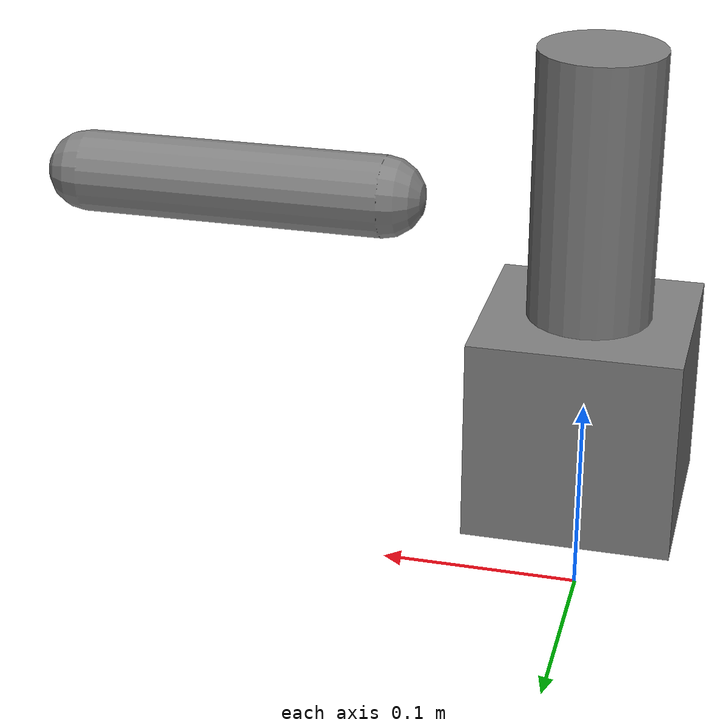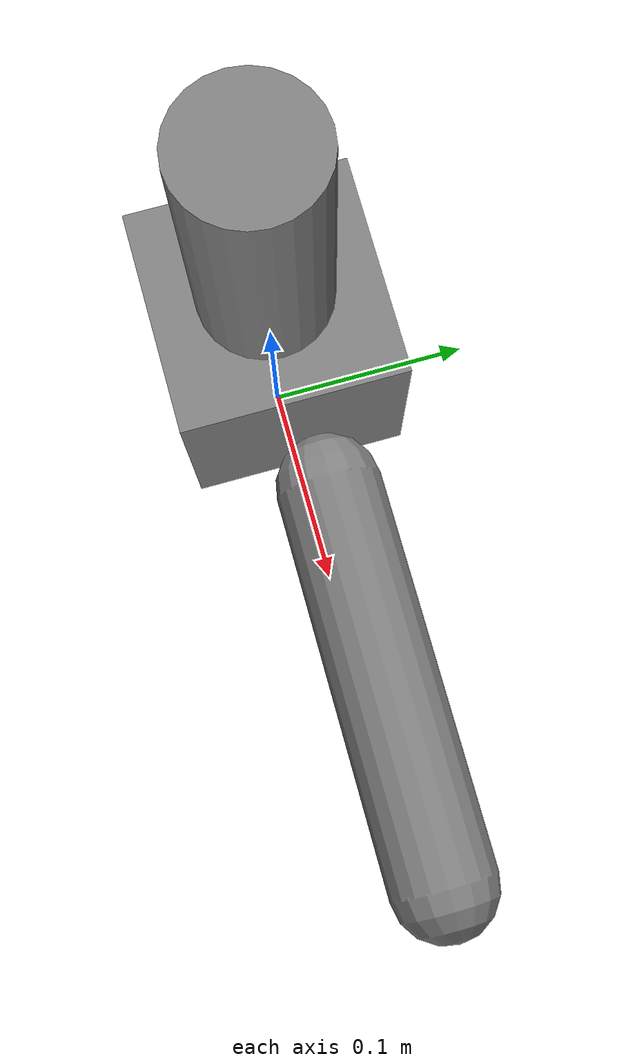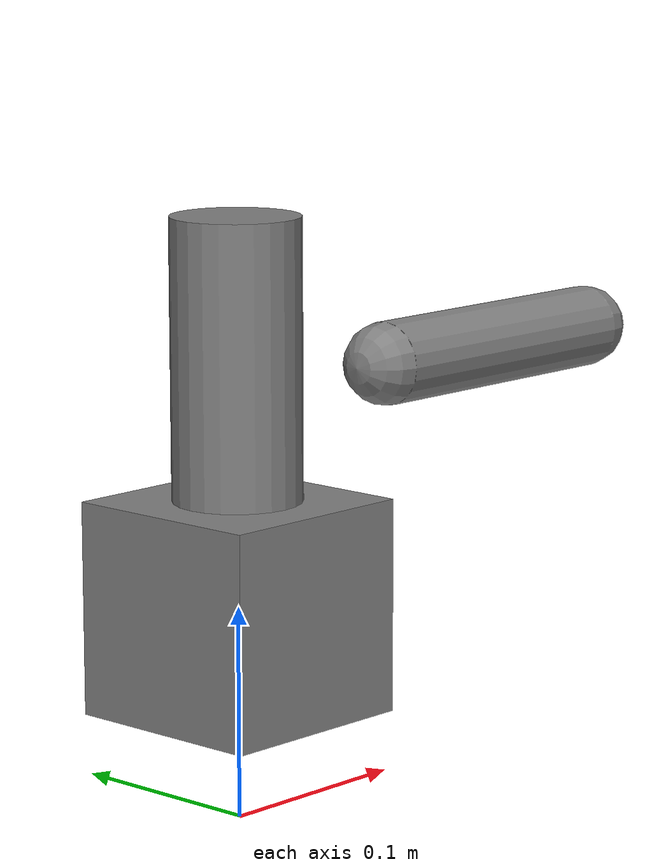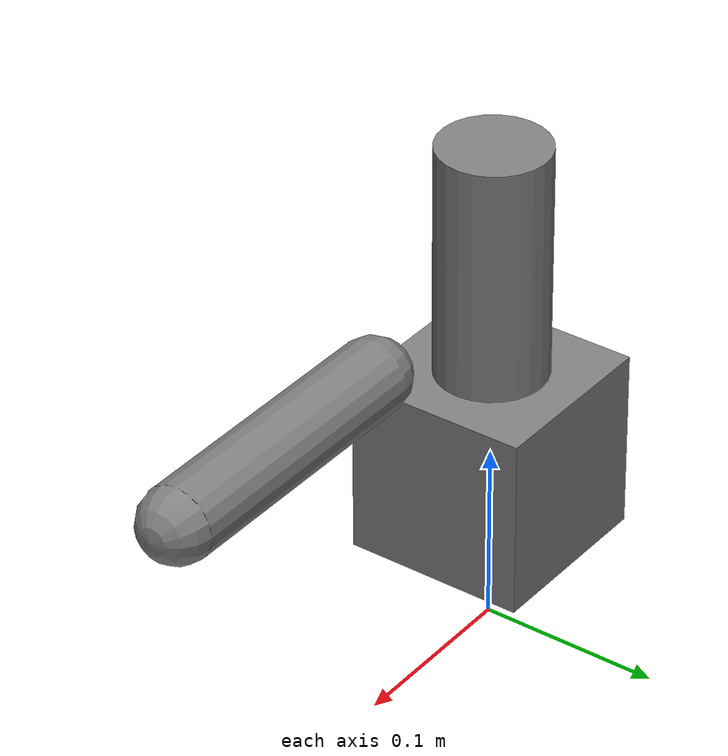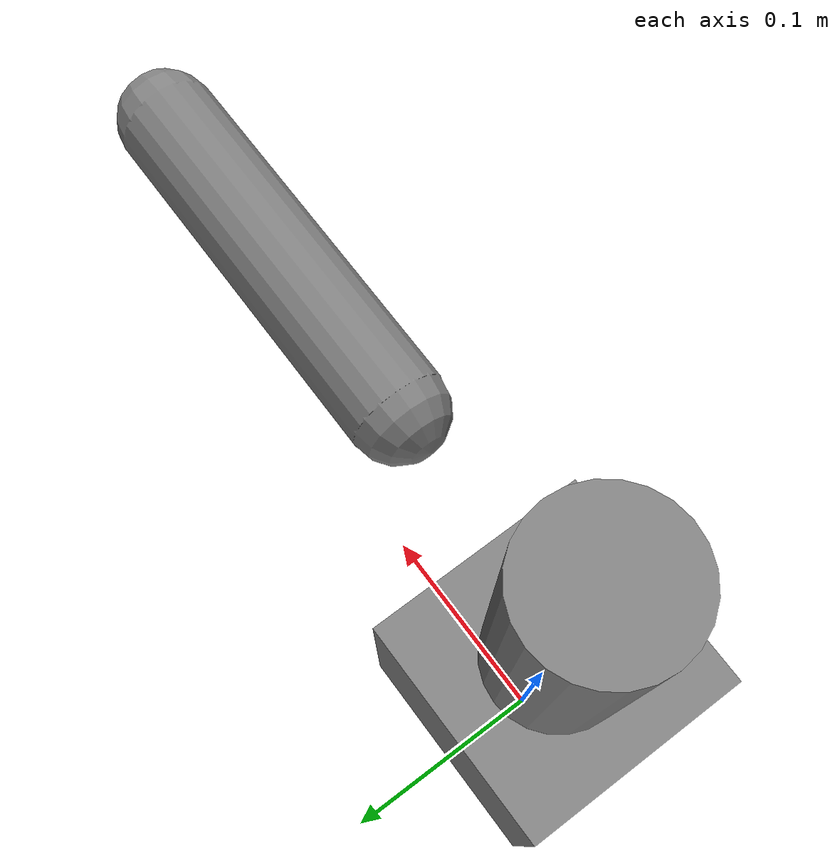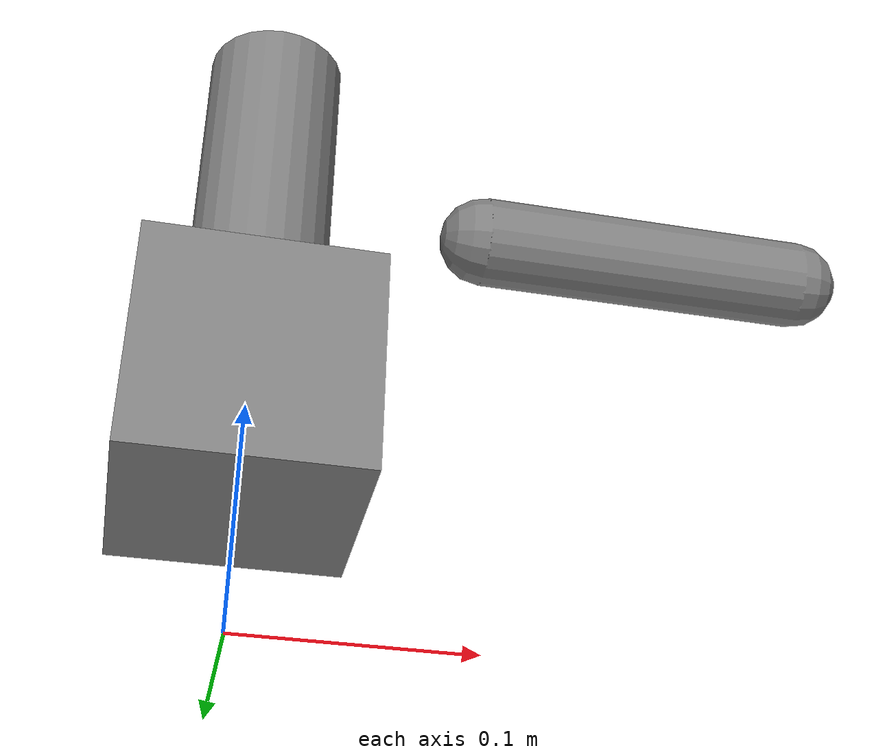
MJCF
<mujoco model="prismatic_test">
  <!-- Test robot with prismatic and revolute joints -->
  <compiler angle="degree"/>

  <worldbody>
    <body name="base" pos="0 0 0">
      <body name="slider" pos="0 0 0.1">
        <joint name="slide_joint" type="slide" axis="1 0 0" range="-0.5 0.5"/>
        <geom type="box" size="0.05 0.05 0.05"/>
        <body name="rotator" pos="0 0 0.1">
          <joint name="rotate_joint" type="hinge" axis="0 0 1" range="-180 180"/>
          <geom type="cylinder" size="0.03 0.08"/>
          <body name="arm" pos="0.1 0 0">
            <joint name="arm_joint" type="hinge" axis="0 1 0" range="-90 90"/>
            <geom type="capsule" fromto="0 0 0 0.15 0 0" size="0.02"/>
            <site name="tip" pos="0.15 0 0"/>
          </body>
        </body>
      </body>
    </body>
  </worldbody>
</mujoco>
